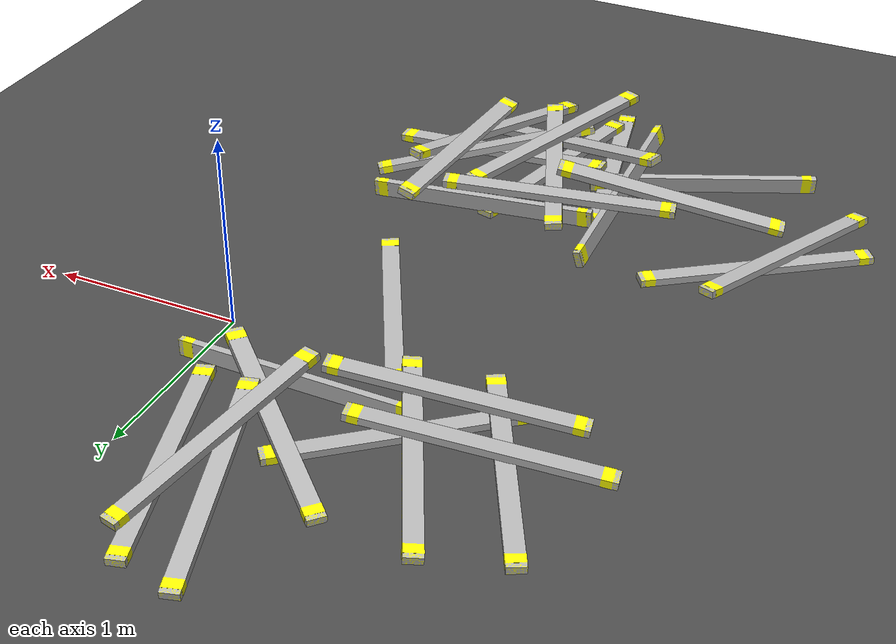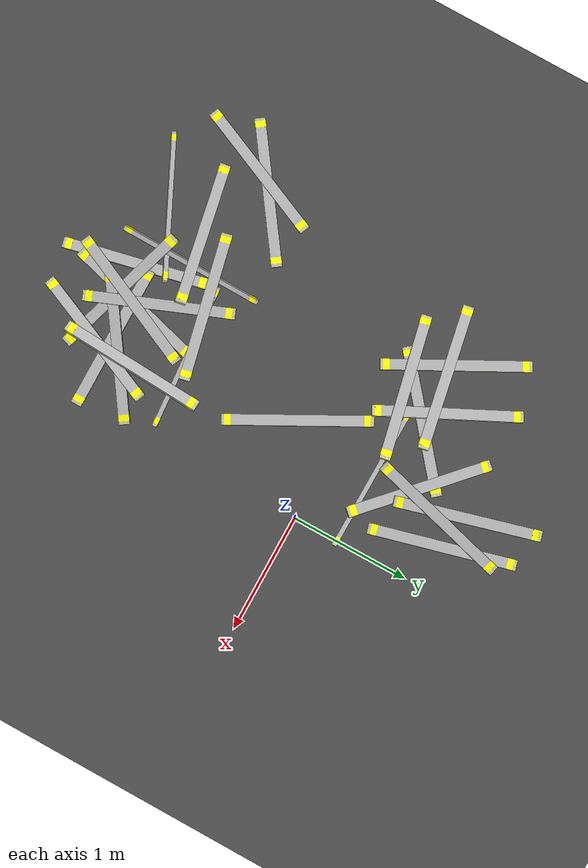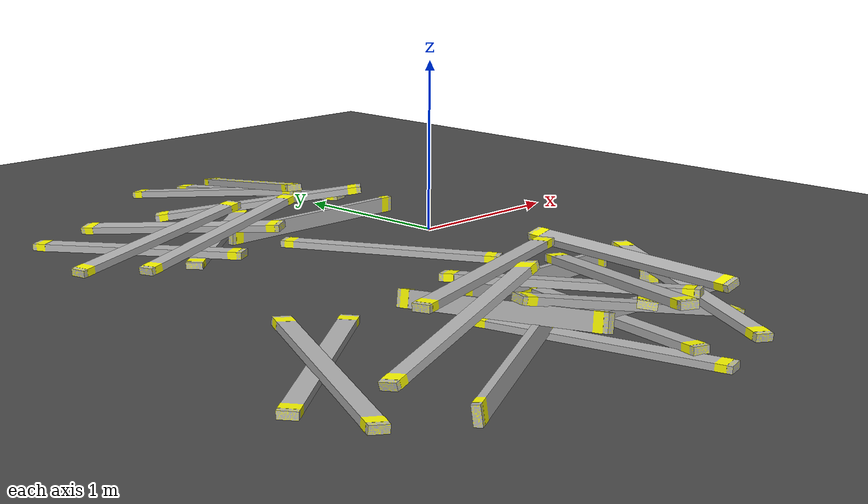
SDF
<sdf version="1.6">
 <world name="default">
  <model name="ground_plane">
   <static>1</static>
   <link name="link">
    <collision name="collision">
     <geometry><plane><normal>0 0 1</normal><size>100 100</size></plane></geometry>
     <surface><friction><ode><mu>100</mu><mu2>50</mu2></ode></friction></surface>
    </collision>
    <visual name="visual">
     <cast_shadows>0</cast_shadows>
     <geometry><plane><normal>0 0 1</normal><size>100 100</size></plane></geometry>
     <material>
      <script><uri>file://media/materials/scripts/gazebo.material</uri><name>Gazebo/Grey</name></script>
     </material>
    </visual>
   </link>
  </model>
  <model name="asphalt_plane">
   <static>1</static>
   <link name="link">
    <collision name="collision"><geometry><box><size>20 20 0.1</size></box></geometry></collision>
    <visual name="visual">
     <cast_shadows>0</cast_shadows>
     <geometry><box><size>20 20 0.1</size></box></geometry>
     <material>
      <script>
       <uri>model://asphalt_plane/materials/scripts</uri>
       <uri>model://asphalt_plane/materials/textures</uri>
       <name>vrc/asphalt</name>
      </script>
     </material>
    </visual>
   </link>
   <pose>0.013797 -0.037077 0 0 -0 0</pose>
  </model>
  <model name="lumber_2x4x48_clone">
   <link name="link">
    <inertial>
     <mass>1.4111</mass>
     <inertia><ixx>0.0011</ixx><ixy>0</ixy><ixz>0</ixz><iyy>0.1771</iyy><iyz>0</iyz><izz>0.1763</izz></inertia>
    </inertial>
    <collision name="collision">
     <geometry><box><size>1.2192 0.038 0.0888</size></box></geometry>
     <surface>
      <bounce><restitution_coefficient>0.01</restitution_coefficient><threshold>5</threshold></bounce>
      <friction><ode><mu>5</mu><mu2>5</mu2></ode></friction>
      <contact>
       <ode>
        <soft_cfm>0.001</soft_cfm>
        <kp>10000</kp>
        <kd>1000</kd>
        <max_vel>0.01</max_vel>
        <min_depth>0.001</min_depth>
       </ode>
      </contact>
     </surface>
    </collision>
    <visual name="visual">
     <geometry><mesh><uri>model://drc_practice_2x4/meshes/2x4x48.dae</uri><scale>1 1 1</scale></mesh></geometry>
    </visual>
   </link>
   <pose>-0.564854 0.384342 0.092283 0.001452 -0.001214 -0.013657</pose>
  </model>
  <model name="lumber_2x4x48_clone_3_clone">
   <link name="link">
    <inertial>
     <mass>1.4111</mass>
     <inertia><ixx>0.0011</ixx><ixy>0</ixy><ixz>0</ixz><iyy>0.1771</iyy><iyz>0</iyz><izz>0.1763</izz></inertia>
    </inertial>
    <collision name="collision">
     <geometry><box><size>1.2192 0.038 0.0888</size></box></geometry>
     <surface>
      <bounce><restitution_coefficient>0.01</restitution_coefficient><threshold>5</threshold></bounce>
      <friction><ode><mu>5</mu><mu2>5</mu2></ode></friction>
      <contact>
       <ode>
        <soft_cfm>0.001</soft_cfm>
        <kp>10000</kp>
        <kd>1000</kd>
        <max_vel>0.01</max_vel>
        <min_depth>0.001</min_depth>
       </ode>
      </contact>
     </surface>
    </collision>
    <visual name="visual">
     <geometry><mesh><uri>model://drc_practice_2x4/meshes/2x4x48.dae</uri><scale>1 1 1</scale></mesh></geometry>
    </visual>
   </link>
   <pose>-0.673857 0.749935 0.149963 1.57749 -0.135908 -0.744811</pose>
  </model>
  <model name="lumber_2x4x48_clone_3_clone_0_clone_1">
   <link name="link">
    <inertial>
     <mass>1.4111</mass>
     <inertia><ixx>0.0011</ixx><ixy>0</ixy><ixz>0</ixz><iyy>0.1771</iyy><iyz>0</iyz><izz>0.1763</izz></inertia>
    </inertial>
    <collision name="collision">
     <geometry><box><size>1.2192 0.038 0.0888</size></box></geometry>
     <surface>
      <bounce><restitution_coefficient>0.01</restitution_coefficient><threshold>5</threshold></bounce>
      <friction><ode><mu>5</mu><mu2>5</mu2></ode></friction>
      <contact>
       <ode>
        <soft_cfm>0.001</soft_cfm>
        <kp>10000</kp>
        <kd>1000</kd>
        <max_vel>0.01</max_vel>
        <min_depth>0.001</min_depth>
       </ode>
      </contact>
     </surface>
    </collision>
    <visual name="visual">
     <geometry><mesh><uri>model://drc_practice_2x4/meshes/2x4x48.dae</uri><scale>1 1 1</scale></mesh></geometry>
    </visual>
   </link>
   <pose>-0.539237 0.992165 0.205201 1.58483 0.149511 1.31946</pose>
  </model>
  <model name="lumber_2x4x48_clone_1_clone">
   <link name="link">
    <inertial>
     <mass>1.4111</mass>
     <inertia><ixx>0.0011</ixx><ixy>0</ixy><ixz>0</ixz><iyy>0.1771</iyy><iyz>0</iyz><izz>0.1763</izz></inertia>
    </inertial>
    <collision name="collision">
     <geometry><box><size>1.2192 0.038 0.0888</size></box></geometry>
     <surface>
      <bounce><restitution_coefficient>0.01</restitution_coefficient><threshold>5</threshold></bounce>
      <friction><ode><mu>5</mu><mu2>5</mu2></ode></friction>
      <contact>
       <ode>
        <soft_cfm>0.001</soft_cfm>
        <kp>10000</kp>
        <kd>1000</kd>
        <max_vel>0.01</max_vel>
        <min_depth>0.001</min_depth>
       </ode>
      </contact>
     </surface>
    </collision>
    <visual name="visual">
     <geometry><mesh><uri>model://drc_practice_2x4/meshes/2x4x48.dae</uri><scale>1 1 1</scale></mesh></geometry>
    </visual>
   </link>
   <pose>-0.552 -1.96536 0.101375 -1.58347 0.055161 0.00164</pose>
  </model>
  <model name="lumber_2x4x48_clone_3_clone_0_clone_0_clone">
   <link name="link">
    <inertial>
     <mass>1.4111</mass>
     <inertia><ixx>0.0011</ixx><ixy>0</ixy><ixz>0</ixz><iyy>0.1771</iyy><iyz>0</iyz><izz>0.1763</izz></inertia>
    </inertial>
    <collision name="collision">
     <geometry><box><size>1.2192 0.038 0.0888</size></box></geometry>
     <surface>
      <bounce><restitution_coefficient>0.01</restitution_coefficient><threshold>5</threshold></bounce>
      <friction><ode><mu>5</mu><mu2>5</mu2></ode></friction>
      <contact>
       <ode>
        <soft_cfm>0.001</soft_cfm>
        <kp>10000</kp>
        <kd>1000</kd>
        <max_vel>0.01</max_vel>
        <min_depth>0.001</min_depth>
       </ode>
      </contact>
     </surface>
    </collision>
    <visual name="visual">
     <geometry><mesh><uri>model://drc_practice_2x4/meshes/2x4x48.dae</uri><scale>1 1 1</scale></mesh></geometry>
    </visual>
   </link>
   <pose>-0.491134 -1.88619 0.144906 1.67993 0.126196 0.597179</pose>
  </model>
  <model name="lumber_2x4x48_clone_3_clone_0_clone_0_clone_0_clone">
   <link name="link">
    <inertial>
     <mass>1.4111</mass>
     <inertia><ixx>0.0011</ixx><ixy>0</ixy><ixz>0</ixz><iyy>0.1771</iyy><iyz>0</iyz><izz>0.1763</izz></inertia>
    </inertial>
    <collision name="collision">
     <geometry><box><size>1.2192 0.038 0.0888</size></box></geometry>
     <surface>
      <bounce><restitution_coefficient>0.01</restitution_coefficient><threshold>5</threshold></bounce>
      <friction><ode><mu>5</mu><mu2>5</mu2></ode></friction>
      <contact>
       <ode>
        <soft_cfm>0.001</soft_cfm>
        <kp>10000</kp>
        <kd>1000</kd>
        <max_vel>0.01</max_vel>
        <min_depth>0.001</min_depth>
       </ode>
      </contact>
     </surface>
    </collision>
    <visual name="visual">
     <geometry><mesh><uri>model://drc_practice_2x4/meshes/2x4x48.dae</uri><scale>1 1 1</scale></mesh></geometry>
    </visual>
   </link>
   <pose>-0.906405 -2.09052 0.176876 1.59085 -0.183148 2.82195</pose>
  </model>
  <model name="lumber_2x4x48_clone_0_clone">
   <link name="link">
    <inertial>
     <mass>1.4111</mass>
     <inertia><ixx>0.0011</ixx><ixy>0</ixy><ixz>0</ixz><iyy>0.1771</iyy><iyz>0</iyz><izz>0.1763</izz></inertia>
    </inertial>
    <collision name="collision">
     <geometry><box><size>1.2192 0.038 0.0888</size></box></geometry>
     <surface>
      <bounce><restitution_coefficient>0.01</restitution_coefficient><threshold>5</threshold></bounce>
      <friction><ode><mu>5</mu><mu2>5</mu2></ode></friction>
      <contact>
       <ode>
        <soft_cfm>0.001</soft_cfm>
        <kp>10000</kp>
        <kd>1000</kd>
        <max_vel>0.01</max_vel>
        <min_depth>0.001</min_depth>
       </ode>
      </contact>
     </surface>
    </collision>
    <visual name="visual">
     <geometry><mesh><uri>model://drc_practice_2x4/meshes/2x4x48.dae</uri><scale>1 1 1</scale></mesh></geometry>
    </visual>
   </link>
   <pose>-0.697698 -1.37578 0.121338 -0.062852 0.04429 0.074777</pose>
  </model>
  <model name="lumber_2x4x48_clone_3_clone_0_clone_1_clone">
   <link name="link">
    <inertial>
     <mass>1.4111</mass>
     <inertia><ixx>0.0011</ixx><ixy>0</ixy><ixz>0</ixz><iyy>0.1771</iyy><iyz>0</iyz><izz>0.1763</izz></inertia>
    </inertial>
    <collision name="collision">
     <geometry><box><size>1.2192 0.038 0.0888</size></box></geometry>
     <surface>
      <bounce><restitution_coefficient>0.01</restitution_coefficient><threshold>5</threshold></bounce>
      <friction><ode><mu>5</mu><mu2>5</mu2></ode></friction>
      <contact>
       <ode>
        <soft_cfm>0.001</soft_cfm>
        <kp>10000</kp>
        <kd>1000</kd>
        <max_vel>0.01</max_vel>
        <min_depth>0.001</min_depth>
       </ode>
      </contact>
     </surface>
    </collision>
    <visual name="visual">
     <geometry><mesh><uri>model://drc_practice_2x4/meshes/2x4x48.dae</uri><scale>1 1 1</scale></mesh></geometry>
    </visual>
   </link>
   <pose>-0.877157 -1.94408 0.083185 1.606 0.03211 1.3105</pose>
  </model>
  <model name="lumber_2x4x48_clone_3_clone_0_clone_1_clone_clone_1">
   <link name="link">
    <inertial>
     <mass>1.4111</mass>
     <inertia><ixx>0.0011</ixx><ixy>0</ixy><ixz>0</ixz><iyy>0.1771</iyy><iyz>0</iyz><izz>0.1763</izz></inertia>
    </inertial>
    <collision name="collision">
     <geometry><box><size>1.2192 0.038 0.0888</size></box></geometry>
     <surface>
      <bounce><restitution_coefficient>0.01</restitution_coefficient><threshold>5</threshold></bounce>
      <friction><ode><mu>5</mu><mu2>5</mu2></ode></friction>
      <contact>
       <ode>
        <soft_cfm>0.001</soft_cfm>
        <kp>10000</kp>
        <kd>1000</kd>
        <max_vel>0.01</max_vel>
        <min_depth>0.001</min_depth>
       </ode>
      </contact>
     </surface>
    </collision>
    <visual name="visual">
     <geometry><mesh><uri>model://drc_practice_2x4/meshes/2x4x48.dae</uri><scale>1 1 1</scale></mesh></geometry>
    </visual>
   </link>
   <pose>-1.35796 -1.69868 0.168666 -2.91319 0.117596 1.57101</pose>
  </model>
  <model name="lumber_2x4x48_clone_3_clone_0_clone_1_clone_clone_2">
   <link name="link">
    <inertial>
     <mass>1.4111</mass>
     <inertia><ixx>0.0011</ixx><ixy>0</ixy><ixz>0</ixz><iyy>0.1771</iyy><iyz>0</iyz><izz>0.1763</izz></inertia>
    </inertial>
    <collision name="collision">
     <geometry><box><size>1.2192 0.038 0.0888</size></box></geometry>
     <surface>
      <bounce><restitution_coefficient>0.01</restitution_coefficient><threshold>5</threshold></bounce>
      <friction><ode><mu>5</mu><mu2>5</mu2></ode></friction>
      <contact>
       <ode>
        <soft_cfm>0.001</soft_cfm>
        <kp>10000</kp>
        <kd>1000</kd>
        <max_vel>0.01</max_vel>
        <min_depth>0.001</min_depth>
       </ode>
      </contact>
     </surface>
    </collision>
    <visual name="visual">
     <geometry><mesh><uri>model://drc_practice_2x4/meshes/2x4x48.dae</uri><scale>1 1 1</scale></mesh></geometry>
    </visual>
   </link>
   <pose>-1.68894 -2.0867 0.107476 -0.135063 -0.021502 0.451994</pose>
  </model>
  <model name="lumber_2x4x48_clone_3_clone_0_clone_clone">
   <link name="link">
    <inertial>
     <mass>1.4111</mass>
     <inertia><ixx>0.0011</ixx><ixy>0</ixy><ixz>0</ixz><iyy>0.1771</iyy><iyz>0</iyz><izz>0.1763</izz></inertia>
    </inertial>
    <collision name="collision">
     <geometry><box><size>1.2192 0.038 0.0888</size></box></geometry>
     <surface>
      <bounce><restitution_coefficient>0.01</restitution_coefficient><threshold>5</threshold></bounce>
      <friction><ode><mu>5</mu><mu2>5</mu2></ode></friction>
      <contact>
       <ode>
        <soft_cfm>0.001</soft_cfm>
        <kp>10000</kp>
        <kd>1000</kd>
        <max_vel>0.01</max_vel>
        <min_depth>0.001</min_depth>
       </ode>
      </contact>
     </surface>
    </collision>
    <visual name="visual">
     <geometry><mesh><uri>model://drc_practice_2x4/meshes/2x4x48.dae</uri><scale>1 1 1</scale></mesh></geometry>
    </visual>
   </link>
   <pose>-2.18031 -1.45176 0.067292 1.57915 -0.000162 0.618252</pose>
  </model>
  <model name="lumber_2x4x48_clone_3_clone_0_clone_1_clone_clone_4">
   <link name="link">
    <inertial>
     <mass>1.4111</mass>
     <inertia><ixx>0.0011</ixx><ixy>0</ixy><ixz>0</ixz><iyy>0.1771</iyy><iyz>0</iyz><izz>0.1763</izz></inertia>
    </inertial>
    <collision name="collision">
     <geometry><box><size>1.2192 0.038 0.0888</size></box></geometry>
     <surface>
      <bounce><restitution_coefficient>0.01</restitution_coefficient><threshold>5</threshold></bounce>
      <friction><ode><mu>5</mu><mu2>5</mu2></ode></friction>
      <contact>
       <ode>
        <soft_cfm>0.001</soft_cfm>
        <kp>10000</kp>
        <kd>1000</kd>
        <max_vel>0.01</max_vel>
        <min_depth>0.001</min_depth>
       </ode>
      </contact>
     </surface>
    </collision>
    <visual name="visual">
     <geometry><mesh><uri>model://drc_practice_2x4/meshes/2x4x48.dae</uri><scale>1 1 1</scale></mesh></geometry>
    </visual>
   </link>
   <pose>-1.15895 0.514317 0.067071 1.55847 -0.000841 0.690592</pose>
  </model>
  <model name="lumber_2x4x48_clone_3_clone_0_clone_clone_0_clone_0">
   <link name="link">
    <inertial>
     <mass>1.4111</mass>
     <inertia><ixx>0.0011</ixx><ixy>0</ixy><ixz>0</ixz><iyy>0.1771</iyy><iyz>0</iyz><izz>0.1763</izz></inertia>
    </inertial>
    <collision name="collision">
     <geometry><box><size>1.2192 0.038 0.0888</size></box></geometry>
     <surface>
      <bounce><restitution_coefficient>0.01</restitution_coefficient><threshold>5</threshold></bounce>
      <friction><ode><mu>5</mu><mu2>5</mu2></ode></friction>
      <contact>
       <ode>
        <soft_cfm>0.001</soft_cfm>
        <kp>10000</kp>
        <kd>1000</kd>
        <max_vel>0.01</max_vel>
        <min_depth>0.001</min_depth>
       </ode>
      </contact>
     </surface>
    </collision>
    <visual name="visual">
     <geometry><mesh><uri>model://drc_practice_2x4/meshes/2x4x48.dae</uri><scale>1 1 1</scale></mesh></geometry>
    </visual>
   </link>
   <pose>-0.950466 -1.76015 0.217646 -1.63656 -0.046294 -1.1854</pose>
  </model>
  <model name="lumber_2x4x48_clone_3_clone_0_clone_clone_0_clone_0_clone_2">
   <link name="link">
    <inertial>
     <mass>1.4111</mass>
     <inertia><ixx>0.0011</ixx><ixy>0</ixy><ixz>0</ixz><iyy>0.1771</iyy><iyz>0</iyz><izz>0.1763</izz></inertia>
    </inertial>
    <collision name="collision">
     <geometry><box><size>1.2192 0.038 0.0888</size></box></geometry>
     <surface>
      <bounce><restitution_coefficient>0.01</restitution_coefficient><threshold>5</threshold></bounce>
      <friction><ode><mu>5</mu><mu2>5</mu2></ode></friction>
      <contact>
       <ode>
        <soft_cfm>0.001</soft_cfm>
        <kp>10000</kp>
        <kd>1000</kd>
        <max_vel>0.01</max_vel>
        <min_depth>0.001</min_depth>
       </ode>
      </contact>
     </surface>
    </collision>
    <visual name="visual">
     <geometry><mesh><uri>model://drc_practice_2x4/meshes/2x4x48.dae</uri><scale>1 1 1</scale></mesh></geometry>
    </visual>
   </link>
   <pose>-1.16375 -2.10245 0.065711 -1.5491 -0.000736 -1.35411</pose>
  </model>
  <model name="lumber_2x4x48_clone_3_clone_0_clone_clone_0_clone_0_clone_3">
   <link name="link">
    <inertial>
     <mass>1.4111</mass>
     <inertia><ixx>0.0011</ixx><ixy>0</ixy><ixz>0</ixz><iyy>0.1771</iyy><iyz>0</iyz><izz>0.1763</izz></inertia>
    </inertial>
    <collision name="collision">
     <geometry><box><size>1.2192 0.038 0.0888</size></box></geometry>
     <surface>
      <bounce><restitution_coefficient>0.01</restitution_coefficient><threshold>5</threshold></bounce>
      <friction><ode><mu>5</mu><mu2>5</mu2></ode></friction>
      <contact>
       <ode>
        <soft_cfm>0.001</soft_cfm>
        <kp>10000</kp>
        <kd>1000</kd>
        <max_vel>0.01</max_vel>
        <min_depth>0.001</min_depth>
       </ode>
      </contact>
     </surface>
    </collision>
    <visual name="visual">
     <geometry><mesh><uri>model://drc_practice_2x4/meshes/2x4x48.dae</uri><scale>1 1 1</scale></mesh></geometry>
    </visual>
   </link>
   <pose>-0.360658 1.12838 0.109461 -1.58574 -0.067758 -1.31108</pose>
  </model>
  <model name="lumber_2x4x48_clone_3_clone_0_clone_clone_0_clone_0_clone_6">
   <link name="link">
    <inertial>
     <mass>1.4111</mass>
     <inertia><ixx>0.0011</ixx><ixy>0</ixy><ixz>0</ixz><iyy>0.1771</iyy><iyz>0</iyz><izz>0.1763</izz></inertia>
    </inertial>
    <collision name="collision">
     <geometry><box><size>1.2192 0.038 0.0888</size></box></geometry>
     <surface>
      <bounce><restitution_coefficient>0.01</restitution_coefficient><threshold>5</threshold></bounce>
      <friction><ode><mu>5</mu><mu2>5</mu2></ode></friction>
      <contact>
       <ode>
        <soft_cfm>0.001</soft_cfm>
        <kp>10000</kp>
        <kd>1000</kd>
        <max_vel>0.01</max_vel>
        <min_depth>0.001</min_depth>
       </ode>
      </contact>
     </surface>
    </collision>
    <visual name="visual">
     <geometry><mesh><uri>model://drc_practice_2x4/meshes/2x4x48.dae</uri><scale>1 1 1</scale></mesh></geometry>
    </visual>
   </link>
   <pose>-1.683 0.539202 0.089187 -1.56101 -0.035402 -1.08015</pose>
  </model>
  <model name="lumber_2x4x48_clone_3_clone_0_clone_clone_0_clone_0_clone_7">
   <link name="link">
    <inertial>
     <mass>1.4111</mass>
     <inertia><ixx>0.0011</ixx><ixy>0</ixy><ixz>0</ixz><iyy>0.1771</iyy><iyz>0</iyz><izz>0.1763</izz></inertia>
    </inertial>
    <collision name="collision">
     <geometry><box><size>1.2192 0.038 0.0888</size></box></geometry>
     <surface>
      <bounce><restitution_coefficient>0.01</restitution_coefficient><threshold>5</threshold></bounce>
      <friction><ode><mu>5</mu><mu2>5</mu2></ode></friction>
      <contact>
       <ode>
        <soft_cfm>0.001</soft_cfm>
        <kp>10000</kp>
        <kd>1000</kd>
        <max_vel>0.01</max_vel>
        <min_depth>0.001</min_depth>
       </ode>
      </contact>
     </surface>
    </collision>
    <visual name="visual">
     <geometry><mesh><uri>model://drc_practice_2x4/meshes/2x4x48.dae</uri><scale>1 1 1</scale></mesh></geometry>
    </visual>
   </link>
   <pose>-1.30672 0.662897 0.125206 -1.47027 -0.087667 -1.10529</pose>
  </model>
  <model name="lumber_2x4x48_clone_3_clone_0_clone_clone_0_clone_0_clone_0_clone">
   <link name="link">
    <inertial>
     <mass>1.4111</mass>
     <inertia><ixx>0.0011</ixx><ixy>0</ixy><ixz>0</ixz><iyy>0.1771</iyy><iyz>0</iyz><izz>0.1763</izz></inertia>
    </inertial>
    <collision name="collision">
     <geometry><box><size>1.2192 0.038 0.0888</size></box></geometry>
     <surface>
      <bounce><restitution_coefficient>0.01</restitution_coefficient><threshold>5</threshold></bounce>
      <friction><ode><mu>5</mu><mu2>5</mu2></ode></friction>
      <contact>
       <ode>
        <soft_cfm>0.001</soft_cfm>
        <kp>10000</kp>
        <kd>1000</kd>
        <max_vel>0.01</max_vel>
        <min_depth>0.001</min_depth>
       </ode>
      </contact>
     </surface>
    </collision>
    <visual name="visual">
     <geometry><mesh><uri>model://drc_practice_2x4/meshes/2x4x48.dae</uri><scale>1 1 1</scale></mesh></geometry>
    </visual>
   </link>
   <pose>-0.686721 -0.35677 0.067655 -1.5708 0 -1.07855</pose>
  </model>
  <model name="lumber_2x4x48_clone_3_clone_0_clone_clone_0_clone_0_clone_9">
   <link name="link">
    <inertial>
     <mass>1.4111</mass>
     <inertia><ixx>0.0011</ixx><ixy>0</ixy><ixz>0</ixz><iyy>0.1771</iyy><iyz>0</iyz><izz>0.1763</izz></inertia>
    </inertial>
    <collision name="collision">
     <geometry><box><size>1.2192 0.038 0.0888</size></box></geometry>
     <surface>
      <bounce><restitution_coefficient>0.01</restitution_coefficient><threshold>5</threshold></bounce>
      <friction><ode><mu>5</mu><mu2>5</mu2></ode></friction>
      <contact>
       <ode>
        <soft_cfm>0.001</soft_cfm>
        <kp>10000</kp>
        <kd>1000</kd>
        <max_vel>0.01</max_vel>
        <min_depth>0.001</min_depth>
       </ode>
      </contact>
     </surface>
    </collision>
    <visual name="visual">
     <geometry><mesh><uri>model://drc_practice_2x4/meshes/2x4x48.dae</uri><scale>1 1 1</scale></mesh></geometry>
    </visual>
   </link>
   <pose>-0.651006 1.1985 0.14206 -1.57872 -0.122976 -1.29591</pose>
  </model>
  <model name="lumber_2x4x48_clone_3_clone_0_clone_clone_0_clone_0_clone_11_clone_0">
   <link name="link">
    <inertial>
     <mass>1.4111</mass>
     <inertia><ixx>0.0011</ixx><ixy>0</ixy><ixz>0</ixz><iyy>0.1771</iyy><iyz>0</iyz><izz>0.1763</izz></inertia>
    </inertial>
    <collision name="collision">
     <geometry><box><size>1.2192 0.038 0.0888</size></box></geometry>
     <surface>
      <bounce><restitution_coefficient>0.01</restitution_coefficient><threshold>5</threshold></bounce>
      <friction><ode><mu>5</mu><mu2>5</mu2></ode></friction>
      <contact>
       <ode>
        <soft_cfm>0.001</soft_cfm>
        <kp>10000</kp>
        <kd>1000</kd>
        <max_vel>0.01</max_vel>
        <min_depth>0.001</min_depth>
       </ode>
      </contact>
     </surface>
    </collision>
    <visual name="visual">
     <geometry><mesh><uri>model://drc_practice_2x4/meshes/2x4x48.dae</uri><scale>1 1 1</scale></mesh></geometry>
    </visual>
   </link>
   <pose>-0.868502 -1.96621 0.264281 1.55801 -0.080574 -1.99641</pose>
  </model>
  <model name="lumber_2x4x48_clone_3_clone_0_clone_clone_0_clone_0_clone_11_clone_3">
   <link name="link">
    <inertial>
     <mass>1.4111</mass>
     <inertia><ixx>0.0011</ixx><ixy>0</ixy><ixz>0</ixz><iyy>0.1771</iyy><iyz>0</iyz><izz>0.1763</izz></inertia>
    </inertial>
    <collision name="collision">
     <geometry><box><size>1.2192 0.038 0.0888</size></box></geometry>
     <surface>
      <bounce><restitution_coefficient>0.01</restitution_coefficient><threshold>5</threshold></bounce>
      <friction><ode><mu>5</mu><mu2>5</mu2></ode></friction>
      <contact>
       <ode>
        <soft_cfm>0.001</soft_cfm>
        <kp>10000</kp>
        <kd>1000</kd>
        <max_vel>0.01</max_vel>
        <min_depth>0.001</min_depth>
       </ode>
      </contact>
     </surface>
    </collision>
    <visual name="visual">
     <geometry><mesh><uri>model://drc_practice_2x4/meshes/2x4x48.dae</uri><scale>1 1 1</scale></mesh></geometry>
    </visual>
   </link>
   <pose>-0.417792 -1.7095 0.228762 -1.32389 0.014887 -1.62517</pose>
  </model>
  <model name="lumber_2x4x48_clone_3_clone_0_clone_clone_0_clone_0_clone_11_clone_4">
   <link name="link">
    <inertial>
     <mass>1.4111</mass>
     <inertia><ixx>0.0011</ixx><ixy>0</ixy><ixz>0</ixz><iyy>0.1771</iyy><iyz>0</iyz><izz>0.1763</izz></inertia>
    </inertial>
    <collision name="collision">
     <geometry><box><size>1.2192 0.038 0.0888</size></box></geometry>
     <surface>
      <bounce><restitution_coefficient>0.01</restitution_coefficient><threshold>5</threshold></bounce>
      <friction><ode><mu>5</mu><mu2>5</mu2></ode></friction>
      <contact>
       <ode>
        <soft_cfm>0.001</soft_cfm>
        <kp>10000</kp>
        <kd>1000</kd>
        <max_vel>0.01</max_vel>
        <min_depth>0.001</min_depth>
       </ode>
      </contact>
     </surface>
    </collision>
    <visual name="visual">
     <geometry><mesh><uri>model://drc_practice_2x4/meshes/2x4x48.dae</uri><scale>1 1 1</scale></mesh></geometry>
    </visual>
   </link>
   <pose>-0.468331 -2.07848 0.166292 -1.6327 0.101264 -1.97847</pose>
  </model>
  <model name="lumber_2x4x48_clone_3_clone_0_clone_clone_0_clone_0_clone_11_clone_14_clone_clone_3">
   <link name="link">
    <inertial>
     <mass>1.4111</mass>
     <inertia><ixx>0.0011</ixx><ixy>0</ixy><ixz>0</ixz><iyy>0.1771</iyy><iyz>0</iyz><izz>0.1763</izz></inertia>
    </inertial>
    <collision name="collision">
     <geometry><box><size>1.2192 0.038 0.0888</size></box></geometry>
     <surface>
      <bounce><restitution_coefficient>0.01</restitution_coefficient><threshold>5</threshold></bounce>
      <friction><ode><mu>5</mu><mu2>5</mu2></ode></friction>
      <contact>
       <ode>
        <soft_cfm>0.001</soft_cfm>
        <kp>10000</kp>
        <kd>1000</kd>
        <max_vel>0.01</max_vel>
        <min_depth>0.001</min_depth>
       </ode>
      </contact>
     </surface>
    </collision>
    <visual name="visual">
     <geometry><mesh><uri>model://drc_practice_2x4/meshes/2x4x48.dae</uri><scale>1 1 1</scale></mesh></geometry>
    </visual>
   </link>
   <pose>-1.55273 0.511239 0.142116 1.57425 0.106348 -2.95864</pose>
  </model>
  <model name="lumber_2x4x48_clone_3_clone_0_clone_clone_0_clone_0_clone_11_clone_14_clone_clone_4">
   <link name="link">
    <inertial>
     <mass>1.4111</mass>
     <inertia><ixx>0.0011</ixx><ixy>0</ixy><ixz>0</ixz><iyy>0.1771</iyy><iyz>0</iyz><izz>0.1763</izz></inertia>
    </inertial>
    <collision name="collision">
     <geometry><box><size>1.2192 0.038 0.0888</size></box></geometry>
     <surface>
      <bounce><restitution_coefficient>0.01</restitution_coefficient><threshold>5</threshold></bounce>
      <friction><ode><mu>5</mu><mu2>5</mu2></ode></friction>
      <contact>
       <ode>
        <soft_cfm>0.001</soft_cfm>
        <kp>10000</kp>
        <kd>1000</kd>
        <max_vel>0.01</max_vel>
        <min_depth>0.001</min_depth>
       </ode>
      </contact>
     </surface>
    </collision>
    <visual name="visual">
     <geometry><mesh><uri>model://drc_practice_2x4/meshes/2x4x48.dae</uri><scale>1 1 1</scale></mesh></geometry>
    </visual>
   </link>
   <pose>-1.62021 -1.73747 0.184188 1.72673 0.1821 -2.9313</pose>
  </model>
  <model name="lumber_2x4x48_clone_3_clone_0_clone_clone_0_clone_0_clone_11_clone_14_clone_clone_5">
   <link name="link">
    <inertial>
     <mass>1.4111</mass>
     <inertia><ixx>0.0011</ixx><ixy>0</ixy><ixz>0</ixz><iyy>0.1771</iyy><iyz>0</iyz><izz>0.1763</izz></inertia>
    </inertial>
    <collision name="collision">
     <geometry><box><size>1.2192 0.038 0.0888</size></box></geometry>
     <surface>
      <bounce><restitution_coefficient>0.01</restitution_coefficient><threshold>5</threshold></bounce>
      <friction><ode><mu>5</mu><mu2>5</mu2></ode></friction>
      <contact>
       <ode>
        <soft_cfm>0.001</soft_cfm>
        <kp>10000</kp>
        <kd>1000</kd>
        <max_vel>0.01</max_vel>
        <min_depth>0.001</min_depth>
       </ode>
      </contact>
     </surface>
    </collision>
    <visual name="visual">
     <geometry><mesh><uri>model://drc_practice_2x4/meshes/2x4x48.dae</uri><scale>1 1 1</scale></mesh></geometry>
    </visual>
   </link>
   <pose>-1.11216 -1.4254 0.238667 1.61361 0.030095 -2.91688</pose>
  </model>
  <model name="lumber_2x4x48_clone_3_clone_0_clone_clone_0_clone_0_clone_11_clone_14_clone_clone_8">
   <link name="link">
    <inertial>
     <mass>1.4111</mass>
     <inertia><ixx>0.0011</ixx><ixy>0</ixy><ixz>0</ixz><iyy>0.1771</iyy><iyz>0</iyz><izz>0.1763</izz></inertia>
    </inertial>
    <collision name="collision">
     <geometry><box><size>1.2192 0.038 0.0888</size></box></geometry>
     <surface>
      <bounce><restitution_coefficient>0.01</restitution_coefficient><threshold>5</threshold></bounce>
      <friction><ode><mu>5</mu><mu2>5</mu2></ode></friction>
      <contact>
       <ode>
        <soft_cfm>0.001</soft_cfm>
        <kp>10000</kp>
        <kd>1000</kd>
        <max_vel>0.01</max_vel>
        <min_depth>0.001</min_depth>
       </ode>
      </contact>
     </surface>
    </collision>
    <visual name="visual">
     <geometry><mesh><uri>model://drc_practice_2x4/meshes/2x4x48.dae</uri><scale>1 1 1</scale></mesh></geometry>
    </visual>
   </link>
   <pose>-1.32757 0.268161 0.17013 1.62665 0.128409 -2.93176</pose>
  </model>
  <model name="lumber_2x4x48_clone_3_clone_0_clone_clone_0_clone_0_clone_11_clone_clone_0">
   <link name="link">
    <inertial>
     <mass>1.4111</mass>
     <inertia><ixx>0.0011</ixx><ixy>0</ixy><ixz>0</ixz><iyy>0.1771</iyy><iyz>0</iyz><izz>0.1763</izz></inertia>
    </inertial>
    <collision name="collision">
     <geometry><box><size>1.2192 0.038 0.0888</size></box></geometry>
     <surface>
      <bounce><restitution_coefficient>0.01</restitution_coefficient><threshold>5</threshold></bounce>
      <friction><ode><mu>5</mu><mu2>5</mu2></ode></friction>
      <contact>
       <ode>
        <soft_cfm>0.001</soft_cfm>
        <kp>10000</kp>
        <kd>1000</kd>
        <max_vel>0.01</max_vel>
        <min_depth>0.001</min_depth>
       </ode>
      </contact>
     </surface>
    </collision>
    <visual name="visual">
     <geometry><mesh><uri>model://drc_practice_2x4/meshes/2x4x48.dae</uri><scale>1 1 1</scale></mesh></geometry>
    </visual>
   </link>
   <pose>-2.29326 -1.59665 0.100617 1.49286 0.046458 -1.98914</pose>
  </model>
 </world>
</sdf>
